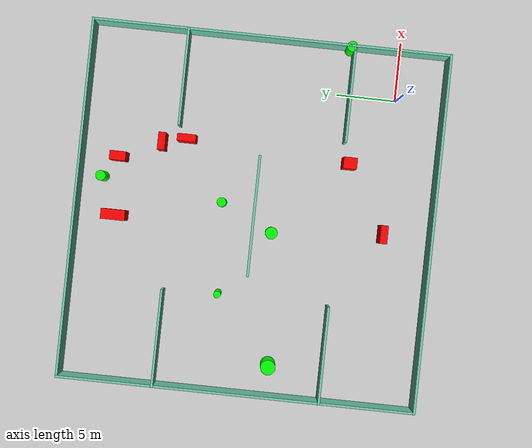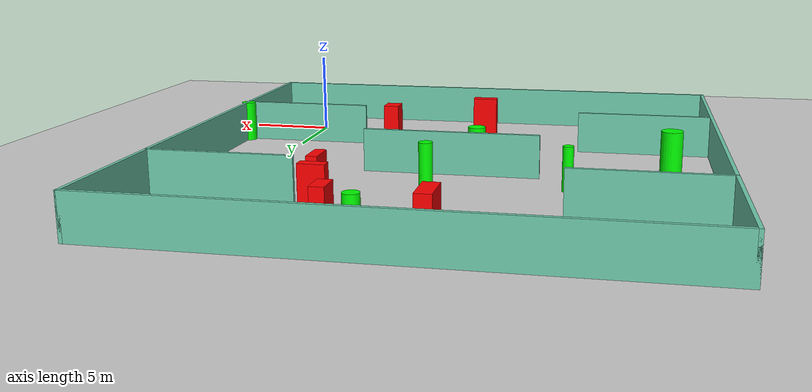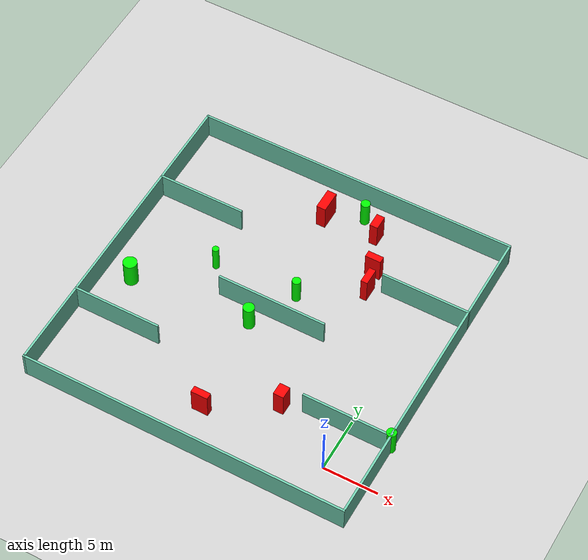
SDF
<sdf version="1.7">
 <world name="default">
  <light name="sun" type="directional">
   <pose>0 0 10 0 -0 0</pose>
   <diffuse>0.8 0.8 0.8 1</diffuse>
   <specular>0.2 0.2 0.2 1</specular>
   <attenuation>
    <range>1000</range>
    <constant>0.9</constant>
    <linear>0.01</linear>
    <quadratic>0.001</quadratic>
   </attenuation>
   <direction>-0.5 0.1 -0.9</direction>
   <spot><inner_angle>0</inner_angle><outer_angle>0</outer_angle><falloff>0</falloff></spot>
  </light>
  <model name="ground_plane">
   <static>1</static>
   <link name="link">
    <collision name="collision">
     <geometry><plane><normal>0 0 1</normal><size>100 100</size></plane></geometry>
     <surface>
      <contact><collide_bitmask>65535</collide_bitmask></contact>
      <friction><ode><mu>100</mu><mu2>50</mu2></ode></friction>
     </surface>
    </collision>
    <visual name="visual">
     <cast_shadows>0</cast_shadows>
     <geometry><plane><normal>0 0 1</normal><size>100 100</size></plane></geometry>
     <material>
      <script><uri>file://media/materials/scripts/gazebo.material</uri><name>Gazebo/Grey</name></script>
     </material>
    </visual>
   </link>
  </model>
  <gravity>0 0 -9.8</gravity>
  <magnetic_field>6e-06 2.3e-05 -4.2e-05</magnetic_field>
  <atmosphere type="adiabatic"/>
  <physics type="ode">
   <max_step_size>0.001</max_step_size>
   <real_time_factor>1</real_time_factor>
   <real_time_update_rate>1000</real_time_update_rate>
  </physics>
  <scene><ambient>0.4 0.4 0.4 1</ambient><background>0.7 0.7 0.7 1</background><shadows>1</shadows></scene>
  <spherical_coordinates>
   <surface_model>EARTH_WGS84</surface_model>
   <latitude_deg>0</latitude_deg>
   <longitude_deg>0</longitude_deg>
   <elevation>0</elevation>
   <heading_deg>0</heading_deg>
  </spherical_coordinates>
  <model name="my_base_walls">
   <link name="Wall_10">
    <collision name="Wall_10_Collision">
     <geometry><box><size>8.2 0.2 2.5</size></box></geometry>
     <pose>0 0 1.25 0 -0 0</pose>
    </collision>
    <visual name="Wall_10_Visual">
     <pose>0 0 1.25 0 -0 0</pose>
     <geometry><box><size>8.2 0.2 2.5</size></box></geometry>
     <material>
      <script><uri>file://media/materials/scripts/gazebo.material</uri><name>Gazebo/Grey</name></script>
      <ambient>0.435294 0.796078 0.67451 1</ambient>
     </material>
     <meta><layer>0</layer></meta>
    </visual>
    <pose>-11 -7 0 0 -0 0</pose>
   </link>
   <link name="Wall_12">
    <collision name="Wall_12_Collision">
     <geometry><box><size>8.2 0.2 2.5</size></box></geometry>
     <pose>0 0 1.25 0 -0 0</pose>
    </collision>
    <visual name="Wall_12_Visual">
     <pose>0 0 1.25 0 -0 0</pose>
     <geometry><box><size>8.2 0.2 2.5</size></box></geometry>
     <material>
      <script><uri>file://media/materials/scripts/gazebo.material</uri><name>Gazebo/Grey</name></script>
      <ambient>0.435294 0.796078 0.67451 1</ambient>
     </material>
     <meta><layer>0</layer></meta>
    </visual>
    <pose>-11 7 0 0 -0 0</pose>
   </link>
   <link name="Wall_14">
    <collision name="Wall_14_Collision">
     <geometry><box><size>8.2 0.2 2.5</size></box></geometry>
     <pose>0 0 1.25 0 -0 0</pose>
    </collision>
    <visual name="Wall_14_Visual">
     <pose>0 0 1.25 0 -0 0</pose>
     <geometry><box><size>8.2 0.2 2.5</size></box></geometry>
     <material>
      <script><uri>file://media/materials/scripts/gazebo.material</uri><name>Gazebo/Grey</name></script>
      <ambient>0.435294 0.796078 0.67451 1</ambient>
     </material>
     <meta><layer>0</layer></meta>
    </visual>
    <pose>11 7 0 0 -0 3.14159</pose>
   </link>
   <link name="Wall_16">
    <collision name="Wall_16_Collision">
     <geometry><box><size>10.2 0.2 2.5</size></box></geometry>
     <pose>0 0 1.25 0 -0 0</pose>
    </collision>
    <visual name="Wall_16_Visual">
     <pose>0 0 1.25 0 -0 0</pose>
     <geometry><box><size>10.2 0.2 2.5</size></box></geometry>
     <material>
      <script><uri>file://media/materials/scripts/gazebo.material</uri><name>Gazebo/Grey</name></script>
      <ambient>0.435294 0.796078 0.67451 1</ambient>
     </material>
     <meta><layer>0</layer></meta>
    </visual>
    <pose>0 0 0 0 -0 3.14159</pose>
   </link>
   <link name="Wall_2">
    <collision name="Wall_2_Collision">
     <geometry><box><size>30.2 0.2 2.5</size></box></geometry>
     <pose>0 0 1.25 0 -0 0</pose>
    </collision>
    <visual name="Wall_2_Visual">
     <pose>0 0 1.25 0 -0 0</pose>
     <geometry><box><size>30.2 0.2 2.5</size></box></geometry>
     <material>
      <script><uri>file://media/materials/scripts/gazebo.material</uri><name>Gazebo/Grey</name></script>
      <ambient>0.435294 0.796078 0.67451 1</ambient>
     </material>
     <meta><layer>0</layer></meta>
    </visual>
    <pose>0 -15 0 0 -0 3.14159</pose>
   </link>
   <link name="Wall_3">
    <collision name="Wall_3_Collision">
     <geometry><box><size>30.2 0.2 2.5</size></box></geometry>
     <pose>0 0 1.25 0 -0 0</pose>
    </collision>
    <visual name="Wall_3_Visual">
     <pose>0 0 1.25 0 -0 0</pose>
     <geometry><box><size>30.2 0.2 2.5</size></box></geometry>
     <material>
      <script><uri>file://media/materials/scripts/gazebo.material</uri><name>Gazebo/Grey</name></script>
      <ambient>0.435294 0.796078 0.67451 1</ambient>
     </material>
     <meta><layer>0</layer></meta>
    </visual>
    <pose>-15 0 0 0 -0 1.5708</pose>
   </link>
   <link name="Wall_4">
    <collision name="Wall_4_Collision">
     <geometry><box><size>30.2 0.2 2.5</size></box></geometry>
     <pose>0 0 1.25 0 -0 0</pose>
    </collision>
    <visual name="Wall_4_Visual">
     <pose>0 0 1.25 0 -0 0</pose>
     <geometry><box><size>30.2 0.2 2.5</size></box></geometry>
     <material>
      <script><uri>file://media/materials/scripts/gazebo.material</uri><name>Gazebo/Grey</name></script>
      <ambient>0.435294 0.796078 0.67451 1</ambient>
     </material>
     <meta><layer>0</layer></meta>
    </visual>
    <pose>0 15 0 0 -0 0</pose>
   </link>
   <link name="Wall_6">
    <collision name="Wall_6_Collision">
     <geometry><box><size>30.2 0.2 2.5</size></box></geometry>
     <pose>0 0 1.25 0 -0 0</pose>
    </collision>
    <visual name="Wall_6_Visual">
     <pose>0 0 1.25 0 -0 0</pose>
     <geometry><box><size>30.2 0.2 2.5</size></box></geometry>
     <material>
      <script><uri>file://media/materials/scripts/gazebo.material</uri><name>Gazebo/Grey</name></script>
      <ambient>0.435294 0.796078 0.67451 1</ambient>
     </material>
     <meta><layer>0</layer></meta>
    </visual>
    <pose>15 0 0 0 -0 1.5708</pose>
   </link>
   <link name="Wall_8">
    <collision name="Wall_8_Collision">
     <geometry><box><size>8.2 0.2 2.5</size></box></geometry>
     <pose>0 0 1.25 0 -0 0</pose>
    </collision>
    <visual name="Wall_8_Visual">
     <pose>0 0 1.25 0 -0 0</pose>
     <geometry><box><size>8.2 0.2 2.5</size></box></geometry>
     <material>
      <script><uri>file://media/materials/scripts/gazebo.material</uri><name>Gazebo/Grey</name></script>
      <ambient>0.435294 0.796078 0.67451 1</ambient>
     </material>
     <meta><layer>0</layer></meta>
    </visual>
    <pose>11 -7 0 0 -0 3.14159</pose>
   </link>
   <static>1</static>
   <pose>-11 11 0 0 -0 0</pose>
  </model>
  <model name="cylinder1">
   <static>1</static>
   <link name="link">
    <inertial>
     <mass>1</mass>
     <inertia><ixx>0.5</ixx><ixy>0</ixy><ixz>0</ixz><iyy>0.5</iyy><iyz>0</iyz><izz>1</izz></inertia>
    </inertial>
    <collision name="collision">
     <geometry><cylinder><radius>0.4196512684480573</radius><length>2.5</length></cylinder></geometry>
    </collision>
    <visual name="visual">
     <geometry><cylinder><radius>0.4196512684480573</radius><length>2.5</length></cylinder></geometry>
     <material>
      <ambient>0 1 0 1</ambient>
      <diffuse>0 1 0 1</diffuse>
      <specular>0.1 0.1 0.1 1</specular>
      <emissive>0 0 0 0</emissive>
     </material>
    </visual>
   </link>
   <pose>-8.948351721276161 24.045745335064098 1.25 0 0 0</pose>
  </model>
  <model name="cylinder2">
   <static>1</static>
   <link name="link">
    <inertial>
     <mass>1</mass>
     <inertia><ixx>0.5</ixx><ixy>0</ixy><ixz>0</ixz><iyy>0.5</iyy><iyz>0</iyz><izz>1</izz></inertia>
    </inertial>
    <collision name="collision">
     <geometry><cylinder><radius>0.6286521081271479</radius><length>2.5</length></cylinder></geometry>
    </collision>
    <visual name="visual">
     <geometry><cylinder><radius>0.6286521081271479</radius><length>2.5</length></cylinder></geometry>
     <material>
      <ambient>0 1 0 1</ambient>
      <diffuse>0 1 0 1</diffuse>
      <specular>0.1 0.1 0.1 1</specular>
      <emissive>0 0 0 0</emissive>
     </material>
    </visual>
   </link>
   <pose>-23.449413065121107 8.510391036366034 1.25 0 0 0</pose>
  </model>
  <model name="cylinder3">
   <static>1</static>
   <link name="link">
    <inertial>
     <mass>1</mass>
     <inertia><ixx>0.5</ixx><ixy>0</ixy><ixz>0</ixz><iyy>0.5</iyy><iyz>0</iyz><izz>1</izz></inertia>
    </inertial>
    <collision name="collision">
     <geometry><cylinder><radius>0.4403731163492964</radius><length>2.5</length></cylinder></geometry>
    </collision>
    <visual name="visual">
     <geometry><cylinder><radius>0.4403731163492964</radius><length>2.5</length></cylinder></geometry>
     <material>
      <ambient>0 1 0 1</ambient>
      <diffuse>0 1 0 1</diffuse>
      <specular>0.1 0.1 0.1 1</specular>
      <emissive>0 0 0 0</emissive>
     </material>
    </visual>
   </link>
   <pose>3.9073437847587655 4.274159748828101 1.25 0 0 0</pose>
  </model>
  <model name="cylinder4">
   <static>1</static>
   <link name="link">
    <inertial>
     <mass>1</mass>
     <inertia><ixx>0.5</ixx><ixy>0</ixy><ixz>0</ixz><iyy>0.5</iyy><iyz>0</iyz><izz>1</izz></inertia>
    </inertial>
    <collision name="collision">
     <geometry><cylinder><radius>0.5088034969194019</radius><length>2.5</length></cylinder></geometry>
    </collision>
    <visual name="visual">
     <geometry><cylinder><radius>0.5088034969194019</radius><length>2.5</length></cylinder></geometry>
     <material>
      <ambient>0 1 0 1</ambient>
      <diffuse>0 1 0 1</diffuse>
      <specular>0.1 0.1 0.1 1</specular>
      <emissive>0 0 0 0</emissive>
     </material>
    </visual>
   </link>
   <pose>-12.277673082808867 9.385329797444783 1.25 0 0 0</pose>
  </model>
  <model name="cylinder5">
   <static>1</static>
   <link name="link">
    <inertial>
     <mass>1</mass>
     <inertia><ixx>0.5</ixx><ixy>0</ixy><ixz>0</ixz><iyy>0.5</iyy><iyz>0</iyz><izz>1</izz></inertia>
    </inertial>
    <collision name="collision">
     <geometry><cylinder><radius>0.30171964927852485</radius><length>2.5</length></cylinder></geometry>
    </collision>
    <visual name="visual">
     <geometry><cylinder><radius>0.30171964927852485</radius><length>2.5</length></cylinder></geometry>
     <material>
      <ambient>0 1 0 1</ambient>
      <diffuse>0 1 0 1</diffuse>
      <specular>0.1 0.1 0.1 1</specular>
      <emissive>0 0 0 0</emissive>
     </material>
    </visual>
   </link>
   <pose>-17.824016430058023 13.361631459950654 1.25 0 0 0</pose>
  </model>
  <model name="cylinder6">
   <static>1</static>
   <link name="link">
    <inertial>
     <mass>1</mass>
     <inertia><ixx>0.5</ixx><ixy>0</ixy><ixz>0</ixz><iyy>0.5</iyy><iyz>0</iyz><izz>1</izz></inertia>
    </inertial>
    <collision name="collision">
     <geometry><cylinder><radius>0.3912447468101575</radius><length>2.5</length></cylinder></geometry>
    </collision>
    <visual name="visual">
     <geometry><cylinder><radius>0.3912447468101575</radius><length>2.5</length></cylinder></geometry>
     <material>
      <ambient>0 1 0 1</ambient>
      <diffuse>0 1 0 1</diffuse>
      <specular>0.1 0.1 0.1 1</specular>
      <emissive>0 0 0 0</emissive>
     </material>
    </visual>
   </link>
   <pose>-10.135848492696812 13.785023237761617 1.25 0 0 0</pose>
  </model>
  <model name="box1">
   <static>1</static>
   <link name="link">
    <inertial>
     <mass>1</mass>
     <inertia><ixx>0.083</ixx><ixy>0</ixy><ixz>0</ixz><iyy>0.083</iyy><iyz>0</iyz><izz>0.083</izz></inertia>
    </inertial>
    <collision name="collision">
     <geometry><box><size>1.543782926952765 0.6168324263280862 2.5</size></box></geometry>
    </collision>
    <visual name="visual">
     <geometry><box><size>1.543782926952765 0.6168324263280862 2.5</size></box></geometry>
     <material>
      <ambient>1 0 0 1</ambient>
      <diffuse>1 0 0 1</diffuse>
      <specular>0.1 0.1 0.1 1</specular>
      <emissive>0 0 0 0</emissive>
     </material>
    </visual>
    <sensor name="my_contact" type="contact">
     <contact><collision>box_collision</collision><topic>__default_topic__</topic></contact>
    </sensor>
   </link>
   <pose>-11.426220481946583 0.029331234257856664 1.25 0 0 0</pose>
  </model>
  <model name="box2">
   <static>1</static>
   <link name="link">
    <inertial>
     <mass>1</mass>
     <inertia><ixx>0.083</ixx><ixy>0</ixy><ixz>0</ixz><iyy>0.083</iyy><iyz>0</iyz><izz>0.083</izz></inertia>
    </inertial>
    <collision name="collision">
     <geometry><box><size>0.9519851899001257 1.149477860075968 2.5</size></box></geometry>
    </collision>
    <visual name="visual">
     <geometry><box><size>0.9519851899001257 1.149477860075968 2.5</size></box></geometry>
     <material>
      <ambient>1 0 0 1</ambient>
      <diffuse>1 0 0 1</diffuse>
      <specular>0.1 0.1 0.1 1</specular>
      <emissive>0 0 0 0</emissive>
     </material>
    </visual>
    <sensor name="my_contact" type="contact">
     <contact><collision>box_collision</collision><topic>__default_topic__</topic></contact>
    </sensor>
   </link>
   <pose>-5.778776769160693 3.4424405171080688 1.25 0 0 0</pose>
  </model>
  <model name="box3">
   <static>1</static>
   <link name="link">
    <inertial>
     <mass>1</mass>
     <inertia><ixx>0.083</ixx><ixy>0</ixy><ixz>0</ixz><iyy>0.083</iyy><iyz>0</iyz><izz>0.083</izz></inertia>
    </inertial>
    <collision name="collision">
     <geometry><box><size>0.8708499974414088 2.0324445409241205 2.5</size></box></geometry>
    </collision>
    <visual name="visual">
     <geometry><box><size>0.8708499974414088 2.0324445409241205 2.5</size></box></geometry>
     <material>
      <ambient>1 0 0 1</ambient>
      <diffuse>1 0 0 1</diffuse>
      <specular>0.1 0.1 0.1 1</specular>
      <emissive>0 0 0 0</emissive>
     </material>
    </visual>
    <sensor name="my_contact" type="contact">
     <contact><collision>box_collision</collision><topic>__default_topic__</topic></contact>
    </sensor>
   </link>
   <pose>-12.096970587319761 22.710181928893952 1.25 0 0 0</pose>
  </model>
  <model name="box4">
   <static>1</static>
   <link name="link">
    <inertial>
     <mass>1</mass>
     <inertia><ixx>0.083</ixx><ixy>0</ixy><ixz>0</ixz><iyy>0.083</iyy><iyz>0</iyz><izz>0.083</izz></inertia>
    </inertial>
    <collision name="collision">
     <geometry><box><size>0.7563113555404575 1.35887011523585 2.5</size></box></geometry>
    </collision>
    <visual name="visual">
     <geometry><box><size>0.7563113555404575 1.35887011523585 2.5</size></box></geometry>
     <material>
      <ambient>1 0 0 1</ambient>
      <diffuse>1 0 0 1</diffuse>
      <specular>0.1 0.1 0.1 1</specular>
      <emissive>0 0 0 0</emissive>
     </material>
    </visual>
    <sensor name="my_contact" type="contact">
     <contact><collision>box_collision</collision><topic>__default_topic__</topic></contact>
    </sensor>
   </link>
   <pose>-7.15914855336057 22.811638092662164 1.25 0 0 0</pose>
  </model>
  <model name="box5">
   <static>1</static>
   <link name="link">
    <inertial>
     <mass>1</mass>
     <inertia><ixx>0.083</ixx><ixy>0</ixy><ixz>0</ixz><iyy>0.083</iyy><iyz>0</iyz><izz>0.083</izz></inertia>
    </inertial>
    <collision name="collision">
     <geometry><box><size>1.454653176128962 0.6287800682275761 2.5</size></box></geometry>
    </collision>
    <visual name="visual">
     <geometry><box><size>1.454653176128962 0.6287800682275761 2.5</size></box></geometry>
     <material>
      <ambient>1 0 0 1</ambient>
      <diffuse>1 0 0 1</diffuse>
      <specular>0.1 0.1 0.1 1</specular>
      <emissive>0 0 0 0</emissive>
     </material>
    </visual>
    <sensor name="my_contact" type="contact">
     <contact><collision>box_collision</collision><topic>__default_topic__</topic></contact>
    </sensor>
   </link>
   <pose>-5.568064583563665 19.2911161999121 1.25 0 0 0</pose>
  </model>
  <model name="box6">
   <static>1</static>
   <link name="link">
    <inertial>
     <mass>1</mass>
     <inertia><ixx>0.083</ixx><ixy>0</ixy><ixz>0</ixz><iyy>0.083</iyy><iyz>0</iyz><izz>0.083</izz></inertia>
    </inertial>
    <collision name="collision">
     <geometry><box><size>0.6110856882322924 1.580195435626254 2.5</size></box></geometry>
    </collision>
    <visual name="visual">
     <geometry><box><size>0.6110856882322924 1.580195435626254 2.5</size></box></geometry>
     <material>
      <ambient>1 0 0 1</ambient>
      <diffuse>1 0 0 1</diffuse>
      <specular>0.1 0.1 0.1 1</specular>
      <emissive>0 0 0 0</emissive>
     </material>
    </visual>
    <sensor name="my_contact" type="contact">
     <contact><collision>box_collision</collision><topic>__default_topic__</topic></contact>
    </sensor>
   </link>
   <pose>-5.085430752830764 17.248051397441802 1.25 0 0 0</pose>
  </model>
 </world>
</sdf>
